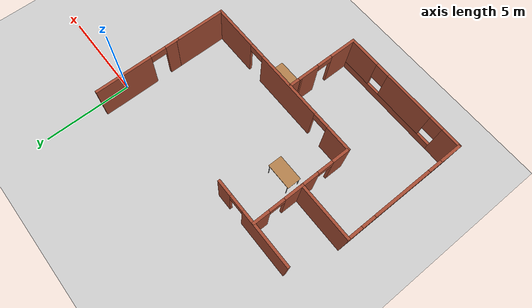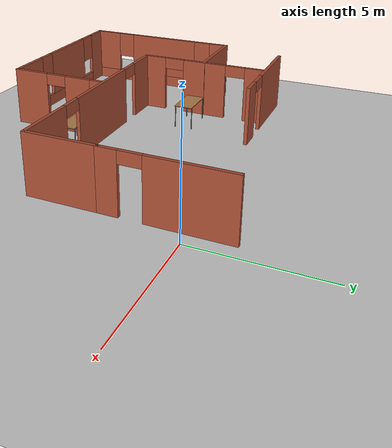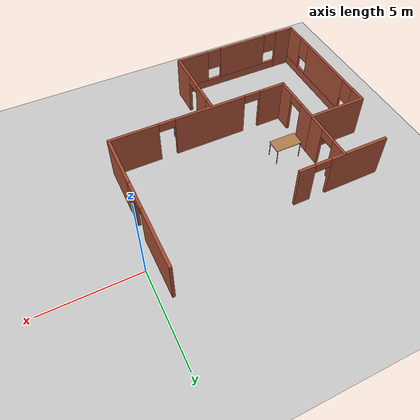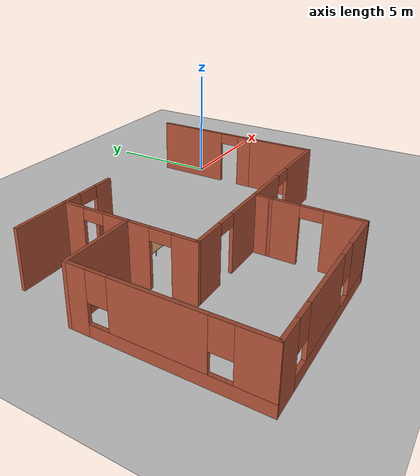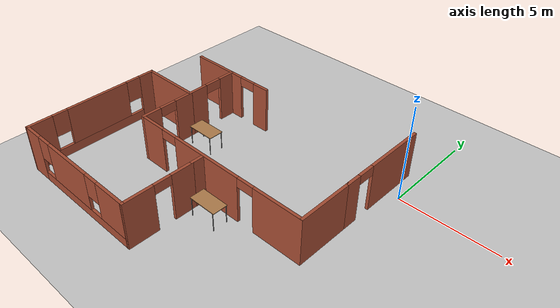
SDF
<sdf version="1.6">
 <world name="default">
  <model name="ground_plane">
   <static>1</static>
   <link name="link">
    <collision name="collision">
     <geometry><plane><normal>0 0 1</normal><size>100 100</size></plane></geometry>
     <surface>
      <contact><collide_bitmask>65535</collide_bitmask></contact>
      <friction><ode><mu>100</mu><mu2>50</mu2></ode></friction>
     </surface>
    </collision>
    <visual name="visual">
     <cast_shadows>0</cast_shadows>
     <geometry><plane><normal>0 0 1</normal><size>100 100</size></plane></geometry>
     <material>
      <script><uri>file://media/materials/scripts/gazebo.material</uri><name>Gazebo/Grey</name></script>
     </material>
    </visual>
   </link>
  </model>
  <model name="office">
   <pose>2.35048 -0.469027 0 0 -0 0</pose>
   <link name="Wall_10">
    <collision name="Wall_10_Collision">
     <geometry><box><size>3 0.15 2.5</size></box></geometry>
     <pose>0 0 1.25 0 -0 0</pose>
    </collision>
    <visual name="Wall_10_Visual">
     <pose>0 0 1.25 0 -0 0</pose>
     <geometry><box><size>3 0.15 2.5</size></box></geometry>
     <material>
      <script><uri>file://media/materials/scripts/gazebo.material</uri><name>Gazebo/Bricks</name></script>
      <ambient>0 0 1 1</ambient>
     </material>
     <meta><layer>0</layer></meta>
    </visual>
    <pose>-3.00328 -4.16052 0 0 -0 1.5708</pose>
   </link>
   <link name="Wall_11">
    <pose>-3.00328 -0.310524 0 0 -0 1.5708</pose>
    <visual name="Wall_11_Visual_0">
     <pose>-2.09105 0 1.25 0 -0 0</pose>
     <geometry><box><size>0.817909 0.15 2.5</size></box></geometry>
     <material>
      <script><uri>file://media/materials/scripts/gazebo.material</uri><name>Gazebo/Bricks</name></script>
      <ambient>0 0 1 1</ambient>
     </material>
     <meta><layer>0</layer></meta>
    </visual>
    <collision name="Wall_11_Collision_0">
     <geometry><box><size>0.817909 0.15 2.5</size></box></geometry>
     <pose>-2.09105 0 1.25 0 -0 0</pose>
    </collision>
    <visual name="Wall_11_Visual_1">
     <pose>0.858954 0 1.25 0 -0 0</pose>
     <geometry><box><size>3.28209 0.15 2.5</size></box></geometry>
     <material>
      <script><uri>file://media/materials/scripts/gazebo.material</uri><name>Gazebo/Bricks</name></script>
      <ambient>0 0 1 1</ambient>
     </material>
     <meta><layer>0</layer></meta>
    </visual>
    <collision name="Wall_11_Collision_1">
     <geometry><box><size>3.28209 0.15 2.5</size></box></geometry>
     <pose>0.858954 0 1.25 0 -0 0</pose>
    </collision>
    <visual name="Wall_11_Visual_2">
     <pose>-1.23209 0 2.25 0 -0 0</pose>
     <geometry><box><size>0.9 0.15 0.5</size></box></geometry>
     <material>
      <script><uri>file://media/materials/scripts/gazebo.material</uri><name>Gazebo/Bricks</name></script>
      <ambient>0 0 1 1</ambient>
     </material>
     <meta><layer>0</layer></meta>
    </visual>
    <collision name="Wall_11_Collision_2">
     <geometry><box><size>0.9 0.15 0.5</size></box></geometry>
     <pose>-1.23209 0 2.25 0 -0 0</pose>
    </collision>
   </link>
   <link name="Wall_25">
    <pose>-8.60667 -8.05568 0 0 -0 1.5709</pose>
    <visual name="Wall_25_Visual_0">
     <pose>-1.07228 0 1.25 0 -0 0</pose>
     <geometry><box><size>1.60545 0.15 2.5</size></box></geometry>
     <material>
      <script><uri>file://media/materials/scripts/gazebo.material</uri><name>Gazebo/Bricks</name></script>
      <ambient>1 1 1 1</ambient>
     </material>
     <meta><layer>0</layer></meta>
    </visual>
    <collision name="Wall_25_Collision_0">
     <geometry><box><size>1.60545 0.15 2.5</size></box></geometry>
     <pose>-1.07228 0 1.25 0 -0 0</pose>
    </collision>
    <visual name="Wall_25_Visual_1">
     <pose>1.25273 0 1.25 0 -0 0</pose>
     <geometry><box><size>1.24455 0.15 2.5</size></box></geometry>
     <material>
      <script><uri>file://media/materials/scripts/gazebo.material</uri><name>Gazebo/Bricks</name></script>
      <ambient>1 1 1 1</ambient>
     </material>
     <meta><layer>0</layer></meta>
    </visual>
    <collision name="Wall_25_Collision_1">
     <geometry><box><size>1.24455 0.15 2.5</size></box></geometry>
     <pose>1.25273 0 1.25 0 -0 0</pose>
    </collision>
    <visual name="Wall_25_Visual_2">
     <pose>0.18045 0 2.25 0 -0 0</pose>
     <geometry><box><size>0.9 0.15 0.5</size></box></geometry>
     <material>
      <script><uri>file://media/materials/scripts/gazebo.material</uri><name>Gazebo/Bricks</name></script>
      <ambient>1 1 1 1</ambient>
     </material>
     <meta><layer>0</layer></meta>
    </visual>
    <collision name="Wall_25_Collision_2">
     <geometry><box><size>0.9 0.15 0.5</size></box></geometry>
     <pose>0.18045 0 2.25 0 -0 0</pose>
    </collision>
   </link>
   <link name="Wall_26">
    <collision name="Wall_26_Collision">
     <geometry><box><size>0.75 0.15 2.5</size></box></geometry>
     <pose>0 0 1.25 0 -0 0</pose>
    </collision>
    <visual name="Wall_26_Visual">
     <pose>0 0 1.25 0 -0 0</pose>
     <geometry><box><size>0.75 0.15 2.5</size></box></geometry>
     <material>
      <script><uri>file://media/materials/scripts/gazebo.material</uri><name>Gazebo/Bricks</name></script>
      <ambient>1 1 1 1</ambient>
     </material>
     <meta><layer>0</layer></meta>
    </visual>
    <pose>-8.60686 -5.95564 0 0 -0 1.5708</pose>
   </link>
   <link name="Wall_28">
    <collision name="Wall_28_Collision">
     <geometry><box><size>3.25 0.15 2.5</size></box></geometry>
     <pose>0 0 1.25 0 -0 0</pose>
    </collision>
    <visual name="Wall_28_Visual">
     <pose>0 0 1.25 0 -0 0</pose>
     <geometry><box><size>3.25 0.15 2.5</size></box></geometry>
     <material>
      <script><uri>file://media/materials/scripts/gazebo.material</uri><name>Gazebo/Bricks</name></script>
      <ambient>1 1 1 1</ambient>
     </material>
     <meta><layer>0</layer></meta>
    </visual>
    <pose>-14.4035 -2.73573 0 0 -0 3.14159</pose>
   </link>
   <link name="Wall_29">
    <pose>-15.9535 -6.28573 0 0 0 -1.5708</pose>
    <visual name="Wall_29_Visual_0">
     <pose>-3.17286 0 1.25 0 -0 0</pose>
     <geometry><box><size>0.904269 0.15 2.5</size></box></geometry>
     <material>
      <script><uri>file://media/materials/scripts/gazebo.material</uri><name>Gazebo/Bricks</name></script>
      <ambient>1 1 1 1</ambient>
     </material>
     <meta><layer>0</layer></meta>
    </visual>
    <collision name="Wall_29_Collision_0">
     <geometry><box><size>0.904269 0.15 2.5</size></box></geometry>
     <pose>-3.17286 0 1.25 0 -0 0</pose>
    </collision>
    <visual name="Wall_29_Visual_1">
     <pose>0.452135 0 0.25 0 -0 0</pose>
     <geometry><box><size>6.34573 0.15 0.5</size></box></geometry>
     <material>
      <script><uri>file://media/materials/scripts/gazebo.material</uri><name>Gazebo/Bricks</name></script>
      <ambient>1 1 1 1</ambient>
     </material>
     <meta><layer>0</layer></meta>
    </visual>
    <collision name="Wall_29_Collision_1">
     <geometry><box><size>6.34573 0.15 0.5</size></box></geometry>
     <pose>0.452135 0 0.25 0 -0 0</pose>
    </collision>
    <visual name="Wall_29_Visual_2">
     <pose>-0.206015 0 1.5 0 -0 0</pose>
     <geometry><box><size>3.42943 0.15 2</size></box></geometry>
     <material>
      <script><uri>file://media/materials/scripts/gazebo.material</uri><name>Gazebo/Bricks</name></script>
      <ambient>1 1 1 1</ambient>
     </material>
     <meta><layer>0</layer></meta>
    </visual>
    <collision name="Wall_29_Collision_2">
     <geometry><box><size>3.42943 0.15 2</size></box></geometry>
     <pose>-0.206015 0 1.5 0 -0 0</pose>
    </collision>
    <visual name="Wall_29_Visual_3">
     <pose>2.96685 0 1.5 0 -0 0</pose>
     <geometry><box><size>1.3163 0.15 2</size></box></geometry>
     <material>
      <script><uri>file://media/materials/scripts/gazebo.material</uri><name>Gazebo/Bricks</name></script>
      <ambient>1 1 1 1</ambient>
     </material>
     <meta><layer>0</layer></meta>
    </visual>
    <collision name="Wall_29_Collision_3">
     <geometry><box><size>1.3163 0.15 2</size></box></geometry>
     <pose>2.96685 0 1.5 0 -0 0</pose>
    </collision>
    <visual name="Wall_29_Visual_4">
     <pose>-2.32073 0 1.9 0 -0 0</pose>
     <geometry><box><size>0.8 0.15 1.2</size></box></geometry>
     <material>
      <script><uri>file://media/materials/scripts/gazebo.material</uri><name>Gazebo/Bricks</name></script>
      <ambient>1 1 1 1</ambient>
     </material>
     <meta><layer>0</layer></meta>
    </visual>
    <collision name="Wall_29_Collision_4">
     <geometry><box><size>0.8 0.15 1.2</size></box></geometry>
     <pose>-2.32073 0 1.9 0 -0 0</pose>
    </collision>
    <visual name="Wall_29_Visual_5">
     <pose>1.9087 0 1.9 0 -0 0</pose>
     <geometry><box><size>0.8 0.15 1.2</size></box></geometry>
     <material>
      <script><uri>file://media/materials/scripts/gazebo.material</uri><name>Gazebo/Bricks</name></script>
      <ambient>1 1 1 1</ambient>
     </material>
     <meta><layer>0</layer></meta>
    </visual>
    <collision name="Wall_29_Collision_5">
     <geometry><box><size>0.8 0.15 1.2</size></box></geometry>
     <pose>1.9087 0 1.9 0 -0 0</pose>
    </collision>
   </link>
   <link name="Wall_3">
    <pose>-12.8015 0.129271 0 0 -0 3.14159</pose>
    <visual name="Wall_3_Visual_0">
     <pose>-2.04673 0 1.25 0 -0 0</pose>
     <geometry><box><size>0.906536 0.15 2.5</size></box></geometry>
     <material>
      <script><uri>file://media/materials/scripts/gazebo.material</uri><name>Gazebo/Bricks</name></script>
      <ambient>1 1 1 1</ambient>
     </material>
     <meta><layer>0</layer></meta>
    </visual>
    <collision name="Wall_3_Collision_0">
     <geometry><box><size>0.906536 0.15 2.5</size></box></geometry>
     <pose>-2.04673 0 1.25 0 -0 0</pose>
    </collision>
    <visual name="Wall_3_Visual_1">
     <pose>0.903268 0 1.25 0 -0 0</pose>
     <geometry><box><size>3.19346 0.15 2.5</size></box></geometry>
     <material>
      <script><uri>file://media/materials/scripts/gazebo.material</uri><name>Gazebo/Bricks</name></script>
      <ambient>1 1 1 1</ambient>
     </material>
     <meta><layer>0</layer></meta>
    </visual>
    <collision name="Wall_3_Collision_1">
     <geometry><box><size>3.19346 0.15 2.5</size></box></geometry>
     <pose>0.903268 0 1.25 0 -0 0</pose>
    </collision>
    <visual name="Wall_3_Visual_2">
     <pose>-1.14346 0 2.25 0 -0 0</pose>
     <geometry><box><size>0.9 0.15 0.5</size></box></geometry>
     <material>
      <script><uri>file://media/materials/scripts/gazebo.material</uri><name>Gazebo/Bricks</name></script>
      <ambient>1 1 1 1</ambient>
     </material>
     <meta><layer>0</layer></meta>
    </visual>
    <collision name="Wall_3_Collision_2">
     <geometry><box><size>0.9 0.15 0.5</size></box></geometry>
     <pose>-1.14346 0 2.25 0 -0 0</pose>
    </collision>
   </link>
   <link name="Wall_30">
    <pose>-12.28 -9.84573 0 0 0 -0.002722</pose>
    <visual name="Wall_30_Visual_0">
     <pose>-3.1768 0 1.25 0 -0 0</pose>
     <geometry><box><size>1.14285 0.15 2.5</size></box></geometry>
     <material>
      <script><uri>file://media/materials/scripts/gazebo.material</uri><name>Gazebo/Bricks</name></script>
      <ambient>1 1 1 1</ambient>
     </material>
     <meta><layer>0</layer></meta>
    </visual>
    <collision name="Wall_30_Collision_0">
     <geometry><box><size>1.14285 0.15 2.5</size></box></geometry>
     <pose>-3.1768 0 1.25 0 -0 0</pose>
    </collision>
    <visual name="Wall_30_Visual_1">
     <pose>0.571426 0 0.25 0 -0 0</pose>
     <geometry><box><size>6.35359 0.15 0.5</size></box></geometry>
     <material>
      <script><uri>file://media/materials/scripts/gazebo.material</uri><name>Gazebo/Bricks</name></script>
      <ambient>1 1 1 1</ambient>
     </material>
     <meta><layer>0</layer></meta>
    </visual>
    <collision name="Wall_30_Collision_1">
     <geometry><box><size>6.35359 0.15 0.5</size></box></geometry>
     <pose>0.571426 0 0.25 0 -0 0</pose>
    </collision>
    <visual name="Wall_30_Visual_2">
     <pose>-0.356663 0 1.5 0 -0 0</pose>
     <geometry><box><size>2.89741 0.15 2</size></box></geometry>
     <material>
      <script><uri>file://media/materials/scripts/gazebo.material</uri><name>Gazebo/Bricks</name></script>
      <ambient>1 1 1 1</ambient>
     </material>
     <meta><layer>0</layer></meta>
    </visual>
    <collision name="Wall_30_Collision_2">
     <geometry><box><size>2.89741 0.15 2</size></box></geometry>
     <pose>-0.356663 0 1.5 0 -0 0</pose>
    </collision>
    <visual name="Wall_30_Visual_3">
     <pose>2.82013 0 1.5 0 -0 0</pose>
     <geometry><box><size>1.85618 0.15 2</size></box></geometry>
     <material>
      <script><uri>file://media/materials/scripts/gazebo.material</uri><name>Gazebo/Bricks</name></script>
      <ambient>1 1 1 1</ambient>
     </material>
     <meta><layer>0</layer></meta>
    </visual>
    <collision name="Wall_30_Collision_3">
     <geometry><box><size>1.85618 0.15 2</size></box></geometry>
     <pose>2.82013 0 1.5 0 -0 0</pose>
    </collision>
    <visual name="Wall_30_Visual_4">
     <pose>-2.20537 0 1.9 0 -0 0</pose>
     <geometry><box><size>0.8 0.15 1.2</size></box></geometry>
     <material>
      <script><uri>file://media/materials/scripts/gazebo.material</uri><name>Gazebo/Bricks</name></script>
      <ambient>1 1 1 1</ambient>
     </material>
     <meta><layer>0</layer></meta>
    </visual>
    <collision name="Wall_30_Collision_4">
     <geometry><box><size>0.8 0.15 1.2</size></box></geometry>
     <pose>-2.20537 0 1.9 0 -0 0</pose>
    </collision>
    <visual name="Wall_30_Visual_5">
     <pose>1.49204 0 1.9 0 -0 0</pose>
     <geometry><box><size>0.8 0.15 1.2</size></box></geometry>
     <material>
      <script><uri>file://media/materials/scripts/gazebo.material</uri><name>Gazebo/Bricks</name></script>
      <ambient>1 1 1 1</ambient>
     </material>
     <meta><layer>0</layer></meta>
    </visual>
    <collision name="Wall_30_Collision_5">
     <geometry><box><size>0.8 0.15 1.2</size></box></geometry>
     <pose>1.49204 0 1.9 0 -0 0</pose>
    </collision>
   </link>
   <link name="Wall_7">
    <pose>-12.8535 -1.31073 0 0 0 -1.5708</pose>
    <visual name="Wall_7_Visual_0">
     <pose>-1.01235 0 1.25 0 -0 0</pose>
     <geometry><box><size>0.975305 0.15 2.5</size></box></geometry>
     <material>
      <script><uri>file://media/materials/scripts/gazebo.material</uri><name>Gazebo/Bricks</name></script>
      <ambient>1 1 1 1</ambient>
     </material>
     <meta><layer>0</layer></meta>
    </visual>
    <collision name="Wall_7_Collision_0">
     <geometry><box><size>0.975305 0.15 2.5</size></box></geometry>
     <pose>-1.01235 0 1.25 0 -0 0</pose>
    </collision>
    <visual name="Wall_7_Visual_1">
     <pose>0.937652 0 1.25 0 -0 0</pose>
     <geometry><box><size>1.1247 0.15 2.5</size></box></geometry>
     <material>
      <script><uri>file://media/materials/scripts/gazebo.material</uri><name>Gazebo/Bricks</name></script>
      <ambient>1 1 1 1</ambient>
     </material>
     <meta><layer>0</layer></meta>
    </visual>
    <collision name="Wall_7_Collision_1">
     <geometry><box><size>1.1247 0.15 2.5</size></box></geometry>
     <pose>0.937652 0 1.25 0 -0 0</pose>
    </collision>
    <visual name="Wall_7_Visual_2">
     <pose>-0.074695 0 2.25 0 -0 0</pose>
     <geometry><box><size>0.9 0.15 0.5</size></box></geometry>
     <material>
      <script><uri>file://media/materials/scripts/gazebo.material</uri><name>Gazebo/Bricks</name></script>
      <ambient>1 1 1 1</ambient>
     </material>
     <meta><layer>0</layer></meta>
    </visual>
    <collision name="Wall_7_Collision_2">
     <geometry><box><size>0.9 0.15 0.5</size></box></geometry>
     <pose>-0.074695 0 2.25 0 -0 0</pose>
    </collision>
   </link>
   <link name="Wall_8">
    <pose>-12.8534 -4.16063 0 0 0 -1.57073</pose>
    <visual name="Wall_8_Visual_0">
     <pose>-0.979716 0 1.25 0 -0 0</pose>
     <geometry><box><size>1.04057 0.15 2.5</size></box></geometry>
     <material>
      <script><uri>file://media/materials/scripts/gazebo.material</uri><name>Gazebo/Bricks</name></script>
      <ambient>1 1 1 1</ambient>
     </material>
     <meta><layer>0</layer></meta>
    </visual>
    <collision name="Wall_8_Collision_0">
     <geometry><box><size>1.04057 0.15 2.5</size></box></geometry>
     <pose>-0.979716 0 1.25 0 -0 0</pose>
    </collision>
    <visual name="Wall_8_Visual_1">
     <pose>0.970284 0 1.25 0 -0 0</pose>
     <geometry><box><size>1.05943 0.15 2.5</size></box></geometry>
     <material>
      <script><uri>file://media/materials/scripts/gazebo.material</uri><name>Gazebo/Bricks</name></script>
      <ambient>1 1 1 1</ambient>
     </material>
     <meta><layer>0</layer></meta>
    </visual>
    <collision name="Wall_8_Collision_1">
     <geometry><box><size>1.05943 0.15 2.5</size></box></geometry>
     <pose>0.970284 0 1.25 0 -0 0</pose>
    </collision>
    <visual name="Wall_8_Visual_2">
     <pose>-0.009431 0 2.25 0 -0 0</pose>
     <geometry><box><size>0.9 0.15 0.5</size></box></geometry>
     <material>
      <script><uri>file://media/materials/scripts/gazebo.material</uri><name>Gazebo/Bricks</name></script>
      <ambient>1 1 1 1</ambient>
     </material>
     <meta><layer>0</layer></meta>
    </visual>
    <collision name="Wall_8_Collision_2">
     <geometry><box><size>0.9 0.15 0.5</size></box></geometry>
     <pose>-0.009431 0 2.25 0 -0 0</pose>
    </collision>
   </link>
   <link name="Wall_9">
    <pose>-7.92828 -5.58552 0 0 -0 0</pose>
    <visual name="Wall_9_Visual_0">
     <pose>-4.23455 0 1.25 0 -0 0</pose>
     <geometry><box><size>1.5309 0.15 2.5</size></box></geometry>
     <material>
      <script><uri>file://media/materials/scripts/gazebo.material</uri><name>Gazebo/Bricks</name></script>
      <ambient>1 1 1 1</ambient>
     </material>
     <meta><layer>0</layer></meta>
    </visual>
    <collision name="Wall_9_Collision_0">
     <geometry><box><size>1.5309 0.15 2.5</size></box></geometry>
     <pose>-4.23455 0 1.25 0 -0 0</pose>
    </collision>
    <visual name="Wall_9_Visual_1">
     <pose>-0.57275 0 1.25 0 -0 0</pose>
     <geometry><box><size>3.9927 0.15 2.5</size></box></geometry>
     <material>
      <script><uri>file://media/materials/scripts/gazebo.material</uri><name>Gazebo/Bricks</name></script>
      <ambient>1 1 1 1</ambient>
     </material>
     <meta><layer>0</layer></meta>
    </visual>
    <collision name="Wall_9_Collision_1">
     <geometry><box><size>3.9927 0.15 2.5</size></box></geometry>
     <pose>-0.57275 0 1.25 0 -0 0</pose>
    </collision>
    <visual name="Wall_9_Visual_2">
     <pose>3.6618 0 1.25 0 -0 0</pose>
     <geometry><box><size>2.6764 0.15 2.5</size></box></geometry>
     <material>
      <script><uri>file://media/materials/scripts/gazebo.material</uri><name>Gazebo/Bricks</name></script>
      <ambient>1 1 1 1</ambient>
     </material>
     <meta><layer>0</layer></meta>
    </visual>
    <collision name="Wall_9_Collision_2">
     <geometry><box><size>2.6764 0.15 2.5</size></box></geometry>
     <pose>3.6618 0 1.25 0 -0 0</pose>
    </collision>
    <visual name="Wall_9_Visual_3">
     <pose>-3.0191 0 2.25 0 -0 0</pose>
     <geometry><box><size>0.9 0.15 0.5</size></box></geometry>
     <material>
      <script><uri>file://media/materials/scripts/gazebo.material</uri><name>Gazebo/Bricks</name></script>
      <ambient>1 1 1 1</ambient>
     </material>
     <meta><layer>0</layer></meta>
    </visual>
    <collision name="Wall_9_Collision_3">
     <geometry><box><size>0.9 0.15 0.5</size></box></geometry>
     <pose>-3.0191 0 2.25 0 -0 0</pose>
    </collision>
    <visual name="Wall_9_Visual_4">
     <pose>1.8736 0 2.25 0 -0 0</pose>
     <geometry><box><size>0.9 0.15 0.5</size></box></geometry>
     <material>
      <script><uri>file://media/materials/scripts/gazebo.material</uri><name>Gazebo/Bricks</name></script>
      <ambient>1 1 1 1</ambient>
     </material>
     <meta><layer>0</layer></meta>
    </visual>
    <collision name="Wall_9_Collision_4">
     <geometry><box><size>0.9 0.15 0.5</size></box></geometry>
     <pose>1.8736 0 2.25 0 -0 0</pose>
    </collision>
   </link>
   <static>1</static>
  </model>
  <model name="table">
   <static>1</static>
   <link name="link">
    <collision name="surface">
     <pose>0 0 1 0 -0 0</pose>
     <geometry><box><size>1.5 0.8 0.03</size></box></geometry>
     <surface><friction><ode><mu>0.6</mu><mu2>0.6</mu2></ode></friction></surface>
    </collision>
    <visual name="visual1">
     <pose>0 0 1 0 -0 0</pose>
     <geometry><box><size>1.5 0.8 0.03</size></box></geometry>
     <material>
      <script><uri>file://media/materials/scripts/gazebo.material</uri><name>Gazebo/Wood</name></script>
     </material>
    </visual>
    <collision name="front_left_leg">
     <pose>0.68 0.38 0.5 0 -0 0</pose>
     <geometry><cylinder><radius>0.02</radius><length>1</length></cylinder></geometry>
    </collision>
    <visual name="front_left_leg">
     <pose>0.68 0.38 0.5 0 -0 0</pose>
     <geometry><cylinder><radius>0.02</radius><length>1</length></cylinder></geometry>
     <material>
      <script><uri>file://media/materials/scripts/gazebo.material</uri><name>Gazebo/Grey</name></script>
     </material>
    </visual>
    <collision name="front_right_leg">
     <pose>0.68 -0.38 0.5 0 -0 0</pose>
     <geometry><cylinder><radius>0.02</radius><length>1</length></cylinder></geometry>
    </collision>
    <visual name="front_right_leg">
     <pose>0.68 -0.38 0.5 0 -0 0</pose>
     <geometry><cylinder><radius>0.02</radius><length>1</length></cylinder></geometry>
     <material>
      <script><uri>file://media/materials/scripts/gazebo.material</uri><name>Gazebo/Grey</name></script>
     </material>
    </visual>
    <collision name="back_right_leg">
     <pose>-0.68 -0.38 0.5 0 -0 0</pose>
     <geometry><cylinder><radius>0.02</radius><length>1</length></cylinder></geometry>
    </collision>
    <visual name="back_right_leg">
     <pose>-0.68 -0.38 0.5 0 -0 0</pose>
     <geometry><cylinder><radius>0.02</radius><length>1</length></cylinder></geometry>
     <material>
      <script><uri>file://media/materials/scripts/gazebo.material</uri><name>Gazebo/Grey</name></script>
     </material>
    </visual>
    <collision name="back_left_leg">
     <pose>-0.68 0.38 0.5 0 -0 0</pose>
     <geometry><cylinder><radius>0.02</radius><length>1</length></cylinder></geometry>
    </collision>
    <visual name="back_left_leg">
     <pose>-0.68 0.38 0.5 0 -0 0</pose>
     <geometry><cylinder><radius>0.02</radius><length>1</length></cylinder></geometry>
     <material>
      <script><uri>file://media/materials/scripts/gazebo.material</uri><name>Gazebo/Grey</name></script>
     </material>
    </visual>
   </link>
   <pose>-9.23524 -3.37487 0 0 -0 0</pose>
  </model>
  <model name="table_clone">
   <static>1</static>
   <link name="link">
    <collision name="surface">
     <pose>0 0 1 0 -0 0</pose>
     <geometry><box><size>1.5 0.8 0.03</size></box></geometry>
     <surface><friction><ode><mu>0.6</mu><mu2>0.6</mu2></ode></friction></surface>
    </collision>
    <visual name="visual1">
     <pose>0 0 1 0 -0 0</pose>
     <geometry><box><size>1.5 0.8 0.03</size></box></geometry>
     <material>
      <script><uri>file://media/materials/scripts/gazebo.material</uri><name>Gazebo/Wood</name></script>
     </material>
    </visual>
    <collision name="front_left_leg">
     <pose>0.68 0.38 0.5 0 -0 0</pose>
     <geometry><cylinder><radius>0.02</radius><length>1</length></cylinder></geometry>
    </collision>
    <visual name="front_left_leg">
     <pose>0.68 0.38 0.5 0 -0 0</pose>
     <geometry><cylinder><radius>0.02</radius><length>1</length></cylinder></geometry>
     <material>
      <script><uri>file://media/materials/scripts/gazebo.material</uri><name>Gazebo/Grey</name></script>
     </material>
    </visual>
    <collision name="front_right_leg">
     <pose>0.68 -0.38 0.5 0 -0 0</pose>
     <geometry><cylinder><radius>0.02</radius><length>1</length></cylinder></geometry>
    </collision>
    <visual name="front_right_leg">
     <pose>0.68 -0.38 0.5 0 -0 0</pose>
     <geometry><cylinder><radius>0.02</radius><length>1</length></cylinder></geometry>
     <material>
      <script><uri>file://media/materials/scripts/gazebo.material</uri><name>Gazebo/Grey</name></script>
     </material>
    </visual>
    <collision name="back_right_leg">
     <pose>-0.68 -0.38 0.5 0 -0 0</pose>
     <geometry><cylinder><radius>0.02</radius><length>1</length></cylinder></geometry>
    </collision>
    <visual name="back_right_leg">
     <pose>-0.68 -0.38 0.5 0 -0 0</pose>
     <geometry><cylinder><radius>0.02</radius><length>1</length></cylinder></geometry>
     <material>
      <script><uri>file://media/materials/scripts/gazebo.material</uri><name>Gazebo/Grey</name></script>
     </material>
    </visual>
    <collision name="back_left_leg">
     <pose>-0.68 0.38 0.5 0 -0 0</pose>
     <geometry><cylinder><radius>0.02</radius><length>1</length></cylinder></geometry>
    </collision>
    <visual name="back_left_leg">
     <pose>-0.68 0.38 0.5 0 -0 0</pose>
     <geometry><cylinder><radius>0.02</radius><length>1</length></cylinder></geometry>
     <material>
      <script><uri>file://media/materials/scripts/gazebo.material</uri><name>Gazebo/Grey</name></script>
     </material>
    </visual>
   </link>
   <pose>-5.18826 -6.84189 0 0 -0 0</pose>
  </model>
 </world>
</sdf>
